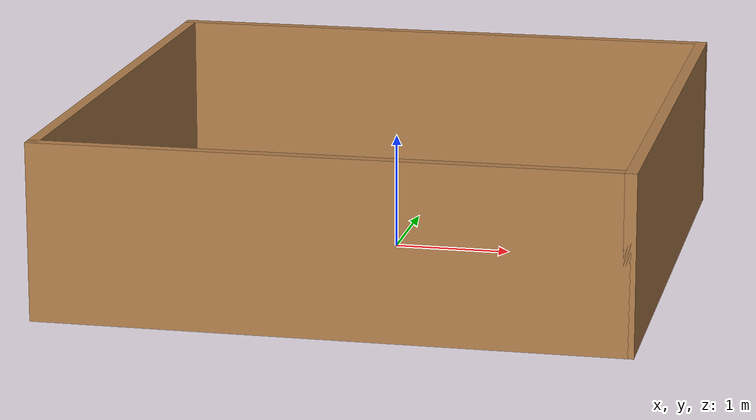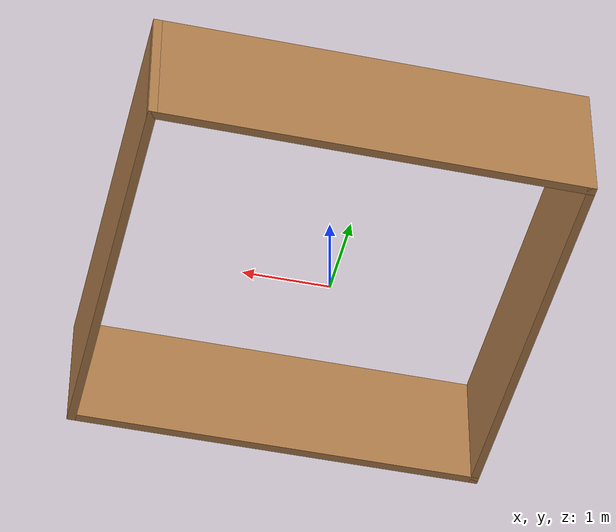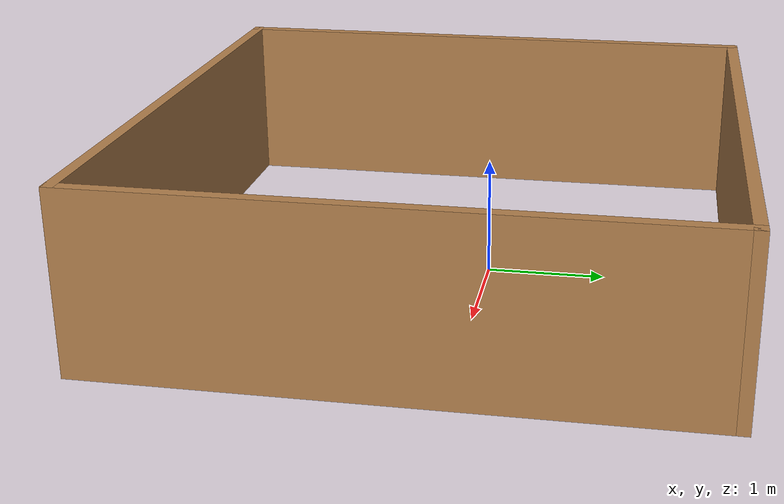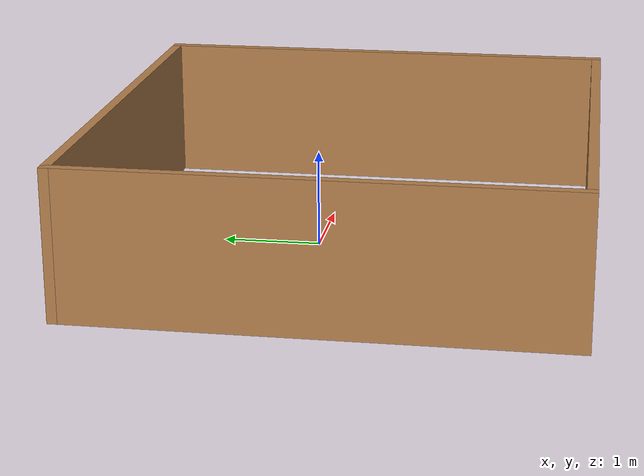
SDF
<?xml version='1.0'?>
<sdf version='1.7'>
  <model name='maze_layout'>
    <pose>0.004 -0.349 0 0 -0 0</pose>
    <link name='Wall_26'>
      <collision name='Wall_26_Collision'>
        <geometry>
          <box>
            <size>4.94962 0.1 1.5</size>
          </box>
        </geometry>
        <pose>0 0 0.75 0 -0 0</pose>
      </collision>
      <visual name='Wall_26_Visual'>
        <pose>0 0 0.75 0 -0 0</pose>
        <geometry>
          <box>
            <size>4.94962 0.1 1.5</size>
          </box>
        </geometry>
        <material>
          <script>
            <uri>file://media/materials/scripts/gazebo.material</uri>
            <name>Gazebo/Wood</name>
          </script>
          <ambient>0.760784 0.662745 0.627451 1</ambient>
        </material>
        <meta>
          <layer>0</layer>
        </meta>
      </visual>
      <pose>-2.425 -0 0 0 -0 -1.5708</pose>
    </link>
    <link name='Wall_27'>
      <collision name='Wall_27_Collision'>
        <geometry>
          <box>
            <size>4.95 0.1 1.5</size>
          </box>
        </geometry>
        <pose>0 0 0.75 0 -0 0</pose>
      </collision>
      <visual name='Wall_27_Visual'>
        <pose>0 0 0.75 0 -0 0</pose>
        <geometry>
          <box>
            <size>4.95 0.1 1.5</size>
          </box>
        </geometry>
        <material>
          <script>
            <uri>file://media/materials/scripts/gazebo.material</uri>
            <name>Gazebo/Wood</name>
          </script>
          <ambient>0.760784 0.662745 0.627451 1</ambient>
        </material>
        <meta>
          <layer>0</layer>
        </meta>
      </visual>
      <pose>0 -2.425 0 0 -0 0</pose>
    </link>
    <link name='Wall_28'>
      <collision name='Wall_28_Collision'>
        <geometry>
          <box>
            <size>4.95 0.1 1.5</size>
          </box>
        </geometry>
        <pose>0 0 0.75 0 -0 0</pose>
      </collision>
      <visual name='Wall_28_Visual'>
        <pose>0 0 0.75 0 -0 0</pose>
        <geometry>
          <box>
            <size>4.95 0.1 1.5</size>
          </box>
        </geometry>
        <material>
          <script>
            <uri>file://media/materials/scripts/gazebo.material</uri>
            <name>Gazebo/Wood</name>
          </script>
          <ambient>0.760784 0.662745 0.627451 1</ambient>
        </material>
        <meta>
          <layer>0</layer>
        </meta>
      </visual>
      <pose>2.425 -0 0 0 -0 1.5708</pose>
    </link>
    <link name='Wall_29'>
      <collision name='Wall_29_Collision'>
        <geometry>
          <box>
            <size>4.95 0.1 1.5</size>
          </box>
        </geometry>
        <pose>0 0 0.75 0 -0 0</pose>
      </collision>
      <visual name='Wall_29_Visual'>
        <pose>0 0 0.75 0 -0 0</pose>
        <geometry>
          <box>
            <size>4.95 0.1 1.5</size>
          </box>
        </geometry>
        <material>
          <script>
            <uri>file://media/materials/scripts/gazebo.material</uri>
            <name>Gazebo/Wood</name>
          </script>
          <ambient>0.760784 0.662745 0.627451 1</ambient>
        </material>
        <meta>
          <layer>0</layer>
        </meta>
      </visual>
      <pose>0 2.425 0 0 -0 3.14159</pose>
    </link>
    <static>1</static>
  </model>
</sdf>
